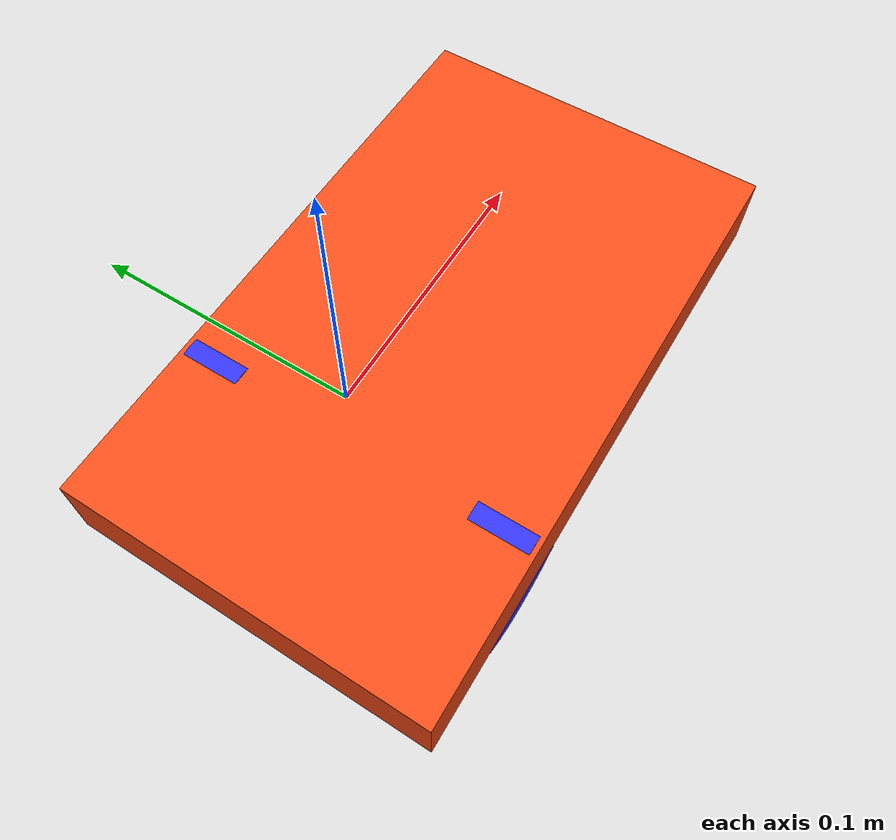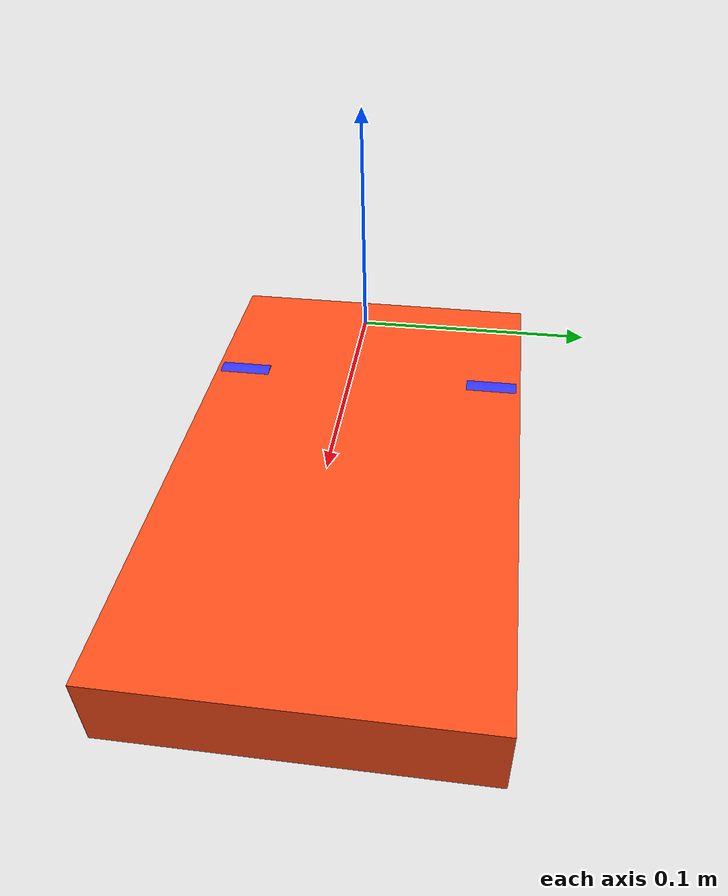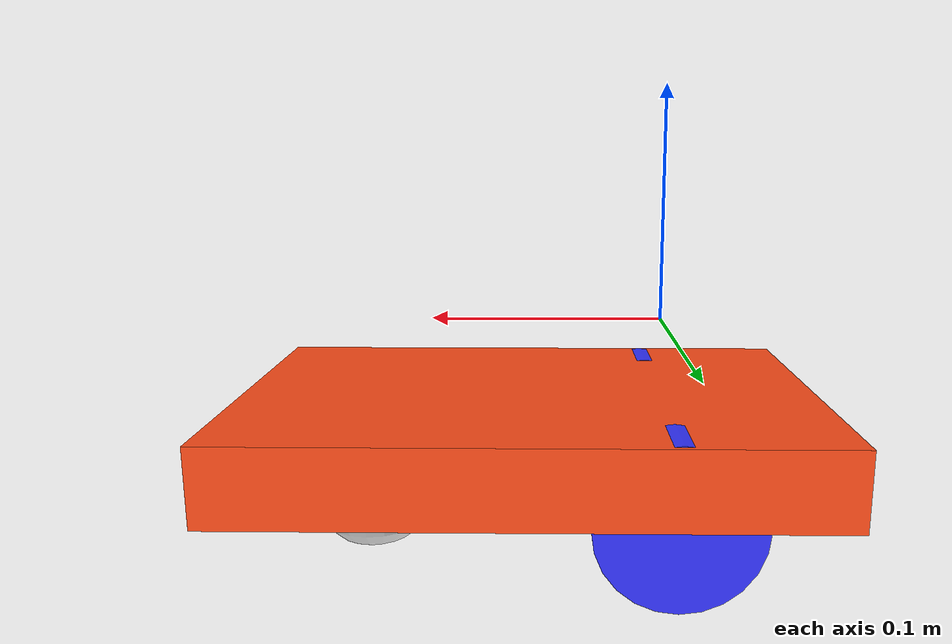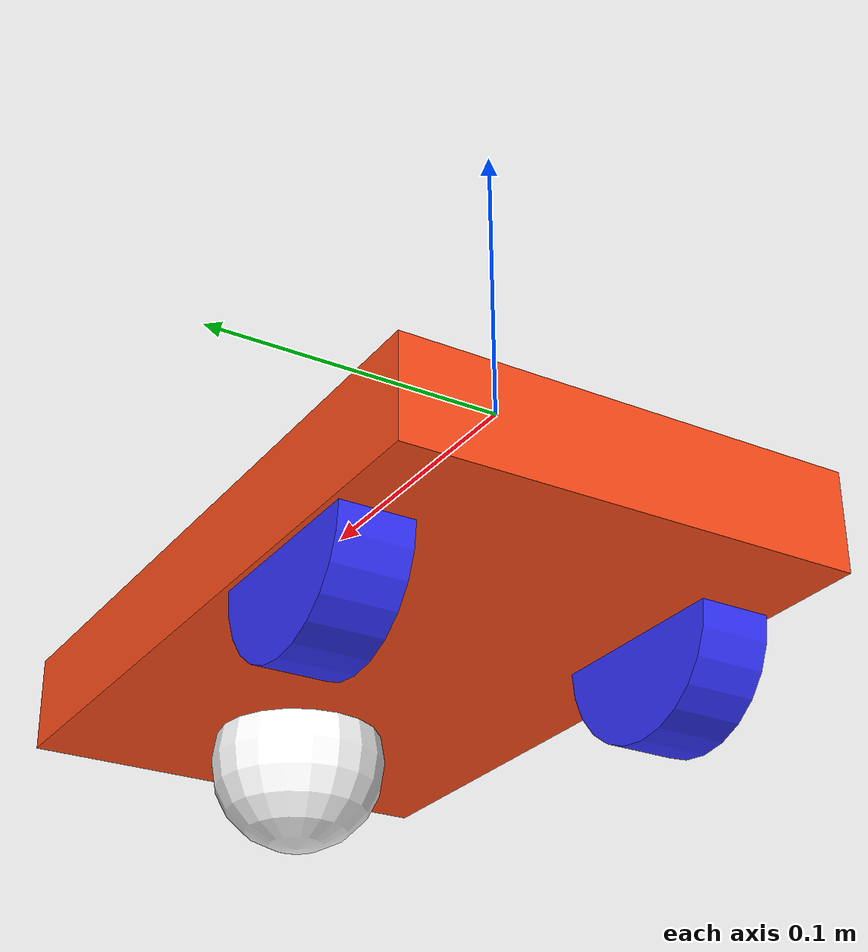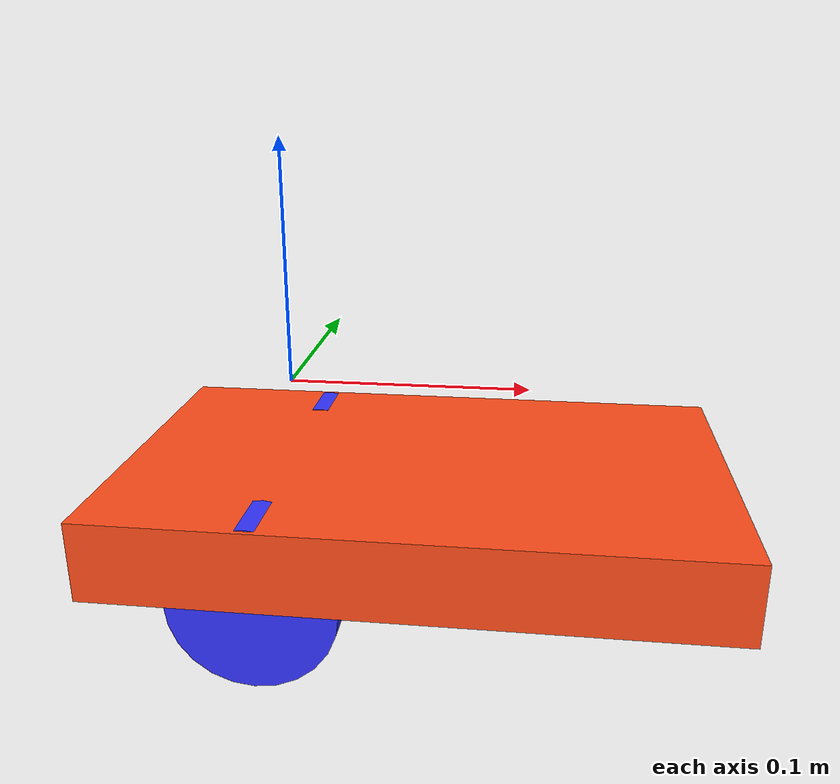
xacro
<?xml version="1.0"?>
<robot xmlns:xacro="http://www.ros.org/wiki/xacro"  name="robot">

    <xacro:arg name="use_ros2_control" default="true"/>
    <xacro:arg name="sim_mode" default="true"/>

    <xacro:include filename="robot_core.xacro" />

    <xacro:if value="$(arg use_ros2_control)">
        <xacro:include filename="ros2_control.xacro" />
    </xacro:if>

    <xacro:unless value="$(arg use_ros2_control)">
        <xacro:include filename="gazebo_control.xacro" />
    </xacro:unless>

</robot>

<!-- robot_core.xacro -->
<robot xmlns:xacro="http://www.ros.org/wiki/xacro" >

    <xacro:include filename="inertial_macros.xacro"/>
    <xacro:include filename="robot_properties.xacro"/>

    <material name="white">
        <color rgba="1 1 1 1" />
    </material>

    <material name="orange">
        <color rgba="1 0.3 0.1 1"/>
    </material>

    <material name="blue">
        <color rgba="0.2 0.2 1 1"/>
    </material>

    <material name="black">
        <color rgba="0 0 0 1"/>
    </material>

    <material name="red">
        <color rgba="1 0 0 1"/>
    </material>

    <!-- BASE LINK -->

    <link name="base_link">

    </link>

    <!-- BASE_FOOTPRINT LINK -->

    <joint name="base_footprint_joint" type="fixed">
        <parent link="base_link"/>
        <child link="base_footprint"/>
        <origin xyz="0 0 0" rpy="0 0 0"/>
    </joint>

    <link name="base_footprint">
    </link>

    <!-- CHASSIS LINK -->

    <joint name="chassis_joint" type="fixed">
        <parent link="base_link"/>
        <child link="chassis"/>
        <origin xyz="${-wheel_offset_x_from_chassis_link} 0 ${-wheel_offset_z_from_chassis_link}" rpy="0 0 0"/>
    </joint>

    <link name="chassis">
        <visual>
            <origin xyz="${chassis_length/2} 0 ${chassis_height/2}"/>
            <geometry>
                <box size="${chassis_length} ${chassis_width} ${chassis_height}"/>
            </geometry>
            <material name="orange"/>
        </visual>
        <collision>
            <origin xyz="${chassis_length/2} 0 ${chassis_height/2}"/>
            <geometry>
                <box size="${chassis_length} ${chassis_width} ${chassis_height}"/>
            </geometry>
        </collision>
        <xacro:inertial_box mass="0.5" x="${chassis_length}" y="${chassis_width}" z="${chassis_height}">
            <origin xyz="${chassis_length/2} 0 ${chassis_height/2}" rpy="0 0 0"/>
        </xacro:inertial_box>
    </link>

    <gazebo reference="chassis">
        <material>Gazebo/Orange</material>
    </gazebo>

    <!-- LEFT WHEEL LINK -->

    <joint name="left_wheel_joint" type="continuous">
        <parent link="base_link"/>
        <child link="left_wheel"/>
        <origin xyz="0 ${wheel_offset_y_from_chassis_link} ${-wheel_offset_z_from_chassis_link}" rpy="-${pi/2} 0 0" />
        <axis xyz="0 0 1"/>
    </joint>

    <link name="left_wheel">
        <visual>
            <geometry>
                <cylinder radius="${wheel_radius}" length="${wheel_thickness}"/>
            </geometry>
            <material name="blue"/>
        </visual>
        <collision>
            <geometry>
                <sphere radius="${wheel_radius}"/>
            </geometry>
        </collision>
        <xacro:inertial_cylinder mass="${wheel_mass}" length="${wheel_thickness}" radius="${wheel_radius}">
            <origin xyz="0 0 0" rpy="0 0 0"/>
        </xacro:inertial_cylinder>
    </link>

    <gazebo reference="left_wheel">
        <material>Gazebo/Blue</material>
    </gazebo>

    <!-- RIGHT WHEEL LINK -->

    <joint name="right_wheel_joint" type="continuous">
        <parent link="base_link"/>
        <child link="right_wheel"/>
        <origin xyz="0 ${-wheel_offset_y_from_chassis_link} ${-wheel_offset_z_from_chassis_link}" rpy="${pi/2} 0 0" />
        <axis xyz="0 0 -1"/>
    </joint>

    <link name="right_wheel">
        <visual>
            <geometry>
                <cylinder radius="${wheel_radius}" length="${wheel_thickness}"/>
            </geometry>
            <material name="blue"/>
        </visual>
        <collision>
            <geometry>
                <sphere radius="${wheel_radius}"/>
            </geometry>
        </collision>
        <xacro:inertial_cylinder mass="${wheel_mass}" length="${wheel_thickness}" radius="${wheel_radius}">
            <origin xyz="0 0 0" rpy="0 0 0"/>
        </xacro:inertial_cylinder>
    </link>

    <gazebo reference="right_wheel">
        <material>Gazebo/Blue</material>
    </gazebo>

    <!-- CASTER WHEEL LINK -->

    <joint name="caster_wheel_joint" type="fixed">
        <parent link="chassis"/>
        <child link="caster_wheel"/>
        <origin xyz="${caster_wheel_offset_x_from_chassis_link} 0 ${-caster_wheel_offset_z_from_chassis_link}"/>
    </joint>

    <link name="caster_wheel">
        <visual>
            <geometry>
                <sphere radius="${caster_wheel_radius}"/>
            </geometry>
            <material name="white"/>
        </visual>
        <collision>
            <geometry>
                <sphere radius="${caster_wheel_radius}"/>
            </geometry>
        </collision>
        <xacro:inertial_sphere mass="${caster_wheel_mass}" radius="${caster_wheel_radius}">
            <origin xyz="0 0 0" rpy="0 0 0"/>
        </xacro:inertial_sphere>
    </link>

    <gazebo reference="caster_wheel">
        <material>Gazebo/White</material>
        <mu1 value="0.001"/>
        <mu2 value="0.001"/>
    </gazebo>

    <gazebo>
        <disable_collisions>
            <link1>chassis</link1>
            <link2>left_wheel</link2>
            <link3>right_wheel</link3>
        </disable_collisions>
    </gazebo>

</robot>

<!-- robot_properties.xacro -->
<robot xmlns:xacro="http://www.ros.org/wiki/xacro" >

<!-- Chassis properties -->

    <xacro:property name="chassis_length" value="0.251"/>
    <xacro:property name="chassis_width" value="0.150"/>
    <xacro:property name="chassis_height" value="0.033"/>
    <xacro:property name="chassis_mass" value="1.0"/>

<!-- Wheel properties -->
    <xacro:property name="wheel_radius" value="0.0335"/>
    <xacro:property name="wheel_thickness" value="0.024"/>
    <xacro:property name="wheel_mass" value="0.05"/>
    <xacro:property name="wheel_offset_x_from_chassis_link" value="0.068"/>
    <xacro:property name="wheel_offset_y_from_chassis_link" value="0.061"/>
    <xacro:property name="wheel_offset_z_from_chassis_link" value="0.065"/>

<!-- Castor Wheels-->
    <xacro:property name="caster_wheel_radius" value="0.03"/>
    <xacro:property name="caster_wheel_mass" value="0.01"/>
    <xacro:property name="caster_wheel_offset_x_from_chassis_link" value="0.196"/>
    <xacro:property name="caster_wheel_offset_z_from_chassis_link" value="0.01"/>

</robot>
